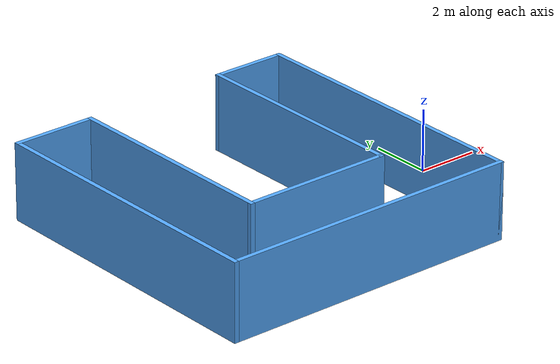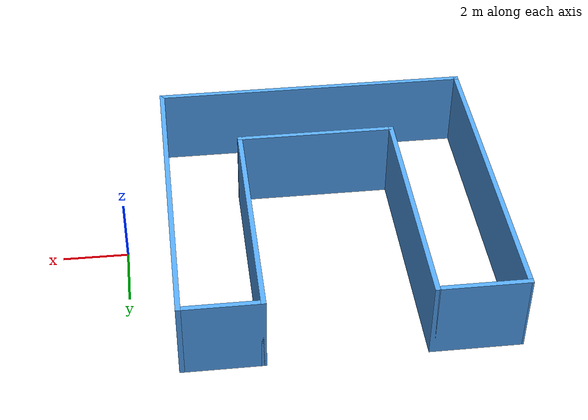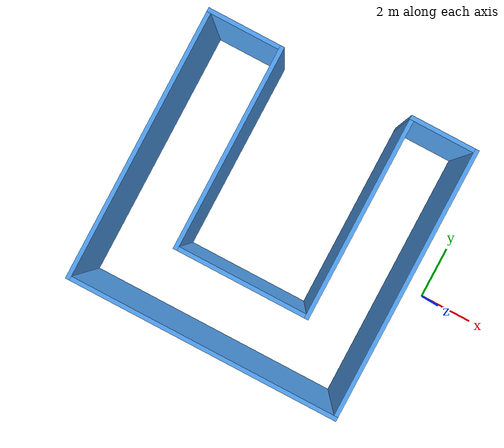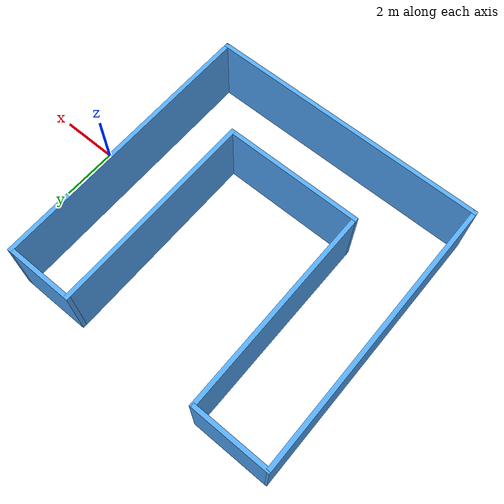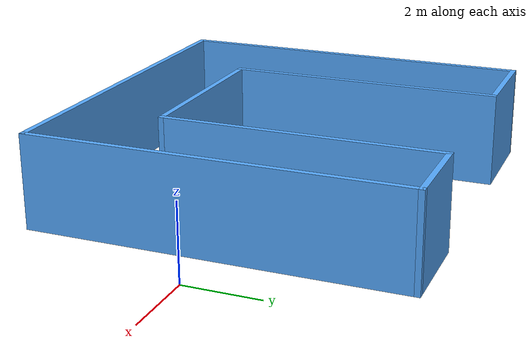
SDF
<?xml version='1.0'?>
<sdf version='1.6'>
  <model name='myBuilding'>
    <pose frame=''>-6.33294 0.107096 0 0 -0 0</pose>
    <link name='Wall_10'>
      <collision name='Wall_10_Collision'>
        <geometry>
          <box>
            <size>7.5 0.15 2.5</size>
          </box>
        </geometry>
        <pose frame=''>0 0 1.25 0 -0 0</pose>
      </collision>
      <visual name='Wall_10_Visual'>
        <pose frame=''>0 0 1.25 0 -0 0</pose>
        <geometry>
          <box>
            <size>7.5 0.15 2.5</size>
          </box>
        </geometry>
        <material>
          <script>
            <uri>file://media/materials/scripts/gazebo.material</uri>
            <name>Gazebo/Grey</name>
          </script>
          <ambient>0.333333 0.666667 1 1</ambient>
        </material>
        <meta>
          <layer>0</layer>
        </meta>
      </visual>
      <pose frame=''>-2.27495 1.25009 0 0 -0 1.5708</pose>
    </link>
    <link name='Wall_11'>
      <collision name='Wall_11_Collision'>
        <geometry>
          <box>
            <size>2.8 0.15 2.5</size>
          </box>
        </geometry>
        <pose frame=''>0 0 1.25 0 -0 0</pose>
      </collision>
      <visual name='Wall_11_Visual'>
        <pose frame=''>0 0 1.25 0 -0 0</pose>
        <geometry>
          <box>
            <size>2.8 0.15 2.5</size>
          </box>
        </geometry>
        <material>
          <script>
            <uri>file://media/materials/scripts/gazebo.material</uri>
            <name>Gazebo/Grey</name>
          </script>
          <ambient>0.333333 0.666667 1 1</ambient>
        </material>
        <meta>
          <layer>0</layer>
        </meta>
      </visual>
      <pose frame=''>-3.6 4.925 0 0 0 -3.14152</pose>
    </link>
    <link name='Wall_2'>
      <collision name='Wall_2_Collision'>
        <geometry>
          <box>
            <size>10 0.15 2.5</size>
          </box>
        </geometry>
        <pose frame=''>0 0 1.25 0 -0 0</pose>
      </collision>
      <visual name='Wall_2_Visual'>
        <pose frame=''>0 0 1.25 0 -0 0</pose>
        <geometry>
          <box>
            <size>10 0.15 2.5</size>
          </box>
        </geometry>
        <material>
          <script>
            <uri>file://media/materials/scripts/gazebo.material</uri>
            <name>Gazebo/Grey</name>
          </script>
          <ambient>0.333333 0.666667 1 1</ambient>
        </material>
        <meta>
          <layer>0</layer>
        </meta>
      </visual>
      <pose frame=''>-4.92506 -9.6e-05 0 0 0 -1.5708</pose>
    </link>
    <link name='Wall_3'>
      <collision name='Wall_3_Collision'>
        <geometry>
          <box>
            <size>10 0.15 2.5</size>
          </box>
        </geometry>
        <pose frame=''>0 0 1.25 0 -0 0</pose>
      </collision>
      <visual name='Wall_3_Visual'>
        <pose frame=''>0 0 1.25 0 -0 0</pose>
        <geometry>
          <box>
            <size>10 0.15 2.5</size>
          </box>
        </geometry>
        <material>
          <script>
            <uri>file://media/materials/scripts/gazebo.material</uri>
            <name>Gazebo/Grey</name>
          </script>
          <ambient>0.333333 0.666667 1 1</ambient>
        </material>
        <meta>
          <layer>0</layer>
        </meta>
      </visual>
      <pose frame=''>0 -4.925 0 0 -0 1.9e-05</pose>
    </link>
    <link name='Wall_4'>
      <collision name='Wall_4_Collision'>
        <geometry>
          <box>
            <size>10 0.15 2.5</size>
          </box>
        </geometry>
        <pose frame=''>0 0 1.25 0 -0 0</pose>
      </collision>
      <visual name='Wall_4_Visual'>
        <pose frame=''>0 0 1.25 0 -0 0</pose>
        <geometry>
          <box>
            <size>10 0.15 2.5</size>
          </box>
        </geometry>
        <material>
          <script>
            <uri>file://media/materials/scripts/gazebo.material</uri>
            <name>Gazebo/Grey</name>
          </script>
          <ambient>0.333333 0.666667 1 1</ambient>
        </material>
        <meta>
          <layer>0</layer>
        </meta>
      </visual>
      <pose frame=''>4.92506 9.2e-05 0 0 -0 1.5708</pose>
    </link>
    <link name='Wall_6'>
      <collision name='Wall_6_Collision'>
        <geometry>
          <box>
            <size>2.5 0.15 2.5</size>
          </box>
        </geometry>
        <pose frame=''>0 0 1.25 0 -0 0</pose>
      </collision>
      <visual name='Wall_6_Visual'>
        <pose frame=''>0 0 1.25 0 -0 0</pose>
        <geometry>
          <box>
            <size>2.5 0.15 2.5</size>
          </box>
        </geometry>
        <material>
          <script>
            <uri>file://media/materials/scripts/gazebo.material</uri>
            <name>Gazebo/Grey</name>
          </script>
          <ambient>0.333333 0.666667 1 1</ambient>
        </material>
        <meta>
          <layer>0</layer>
        </meta>
      </visual>
      <pose frame=''>3.75006 4.92509 0 0 -0 3.14159</pose>
    </link>
    <link name='Wall_8'>
      <collision name='Wall_8_Collision'>
        <geometry>
          <box>
            <size>7.5 0.15 2.5</size>
          </box>
        </geometry>
        <pose frame=''>0 0 1.25 0 -0 0</pose>
      </collision>
      <visual name='Wall_8_Visual'>
        <pose frame=''>0 0 1.25 0 -0 0</pose>
        <geometry>
          <box>
            <size>7.5 0.15 2.5</size>
          </box>
        </geometry>
        <material>
          <script>
            <uri>file://media/materials/scripts/gazebo.material</uri>
            <name>Gazebo/Grey</name>
          </script>
          <ambient>0.333333 0.666667 1 1</ambient>
        </material>
        <meta>
          <layer>0</layer>
        </meta>
      </visual>
      <pose frame=''>2.57505 1.25009 0 0 0 -1.5708</pose>
    </link>
    <link name='Wall_9'>
      <collision name='Wall_9_Collision'>
        <geometry>
          <box>
            <size>5 0.15 2.5</size>
          </box>
        </geometry>
        <pose frame=''>0 0 1.25 0 -0 0</pose>
      </collision>
      <visual name='Wall_9_Visual'>
        <pose frame=''>0 0 1.25 0 -0 0</pose>
        <geometry>
          <box>
            <size>5 0.15 2.5</size>
          </box>
        </geometry>
        <material>
          <script>
            <uri>file://media/materials/scripts/gazebo.material</uri>
            <name>Gazebo/Grey</name>
          </script>
          <ambient>0.333333 0.666667 1 1</ambient>
        </material>
        <meta>
          <layer>0</layer>
        </meta>
      </visual>
      <pose frame=''>0.150055 -2.42491 0 0 -0 3.14159</pose>
    </link>
    <static>1</static>
  </model>
</sdf>
